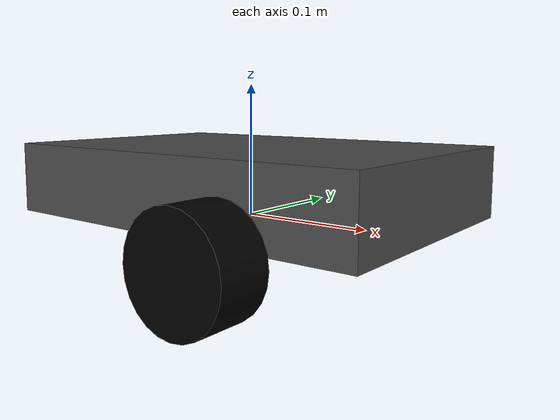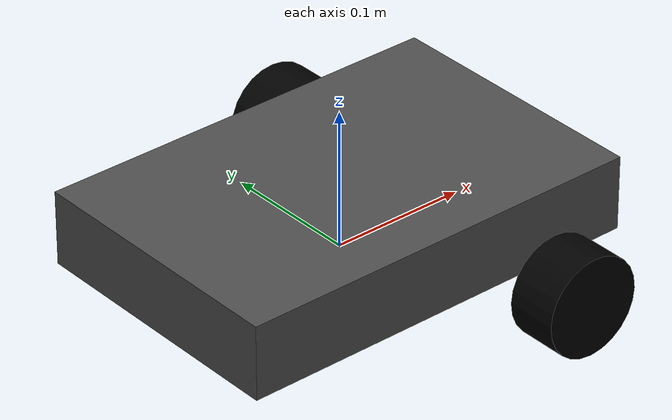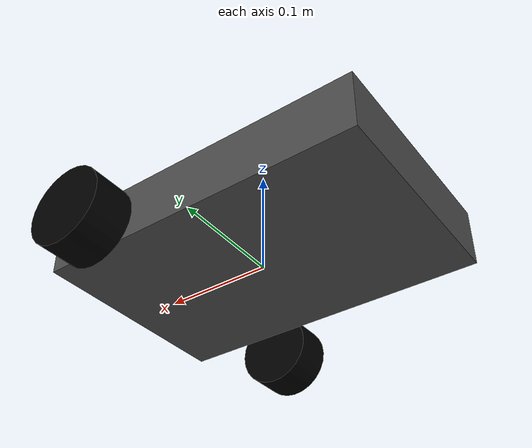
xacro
<?xml version="1.0"?>
<robot xmlns:xacro="http://www.ros.org/wiki/xacro"  name="rover">

    <xacro:include filename="rover_core.xacro"/>

    <xacro:include filename="ros2_real_bot_control.xacro"/>

</robot>

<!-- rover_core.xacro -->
<robot xmlns:xacro="http://www.ros.org/wiki/xacro" >

    <xacro:include filename="inertial_macros.xacro"/>

    <xacro:property name="rover_length" value="0.302"/>
    <xacro:property name="rover_width" value="0.201"/>
    <xacro:property name="rover_height" value="0.054"/>
    <xacro:property name="rover_mass" value="1.0"/>
    <xacro:property name="wheel_radius" value="0.036"/>
    <xacro:property name="wheel_thickness" value="0.037"/>
    <xacro:property name="wheel_mass" value="0.04"/>

    <material name="white">
        <color rgba="1.0 1.0 1.0 1.0"/>
    </material>

    <material name="orange">
        <color rgba="1.0 0.3 0.1 1.0"/>
    </material>

    <material name="blue">
        <color rgba="0.2 0.2 1.0 1.0"/>
    </material>

    <material name="black">
        <color rgba="0.0 0.0 0.0 1.0"/>
    </material>

    <material name="Gray">
        <color rgba="0.3 0.3 0.3 1.0"/>
    </material>

    <!-- Base Link -->
    <link name="base_link">
    </link>

    <joint name="chassis_joint" type="fixed">
        <origin xyz="0.0 0.0 0.0" rpy="0.0 0.0 0.0"/>
        <parent link="base_link"/>
        <child link="chassis"/>
        <axis xyz="0.0 0.0 0.0"/>
        <limit lower="0.0" upper="0.0" effort="0.0" velocity="0.0"/>
    </joint>

    <!-- Chassis Link-->
    <link name="chassis">
        <visual>
            <origin xyz="0.0 0.0 ${rover_height/2}" rpy="0.0 0.0 0.0"/>

            <geometry>
                <box size="${rover_length} ${rover_width} ${rover_height}"/>
            </geometry>

            <material name="Gray">
                <color rgba="0.3 0.3 0.3 1.0"/>
            </material>
        </visual>

        <collision>
            <origin xyz="0.0 0.0 0.01" rpy="0.0 0.0 0.0"/>
            <geometry>
                <box size="${rover_length} ${rover_width} ${rover_height}"/>
            </geometry>
        </collision>

        <xacro:inertial_box mass = "0.5"  x = "${rover_length}" y = "${rover_width}" z = "${rover_height}">
            <origin xyz="0.0 0.0 ${rover_height/2}" rpy="0.0 0.0 0.0"/>

        </xacro:inertial_box>
    </link>

    <gazebo reference = "chassis">
        <material>
            Gazebo/White
        </material>
    </gazebo>

    <!-- front face Link -->

    <joint name="face_joint" type="fixed">
        <origin xyz="0.0 0.0 0.0" rpy="0.0 0.0 0.0"/>
        <parent link="base_link"/>
        <child link="Front"/>
        <axis xyz="0.0 0.0 0.0"/>
        <limit lower="0.0" upper="0.0" effort="0.0" velocity="0.0"/>
    </joint>

    <link name="Front">
        <visual>
            <origin xyz="0.12 0.0 0.04" rpy="0.0 0.0 0.0"/>

            <geometry>
                <box size=".02 0.02 0.02"/>
            </geometry>

            <material name="blue">
                <color rgba="0.3 0.3 0.3 1.0"/>
            </material>
        </visual>
    </link>

    <gazebo reference = "Front">
        <material>
            Gazebo/Blue
        </material>
    </gazebo>

    <!--  Front Left Wheel Link-->
    <joint name="left_wheel_joint" type="continuous">

        <parent link="base_link"/>
        <child link="left_wheel"/>
        <origin xyz="0.075 0.140 0.0" rpy="1.57 0.0 0.0"/>
        <axis xyz="0.0 0.0 -0.1"/>

    </joint>

    <link name="left_wheel">
        <visual>

            <geometry>
                <cylinder radius="${wheel_radius}" length="${wheel_thickness}"/>
            </geometry>

            <material name="orange">
                <color rgba="0.0 0.0 0.0 1.0"/>
            </material>
        </visual>

        <collision>
            <geometry>
                <sphere  radius="${wheel_radius}"/>
            </geometry>
        </collision>

        <xacro:inertial_cylinder mass="${wheel_mass}" radius="${wheel_radius}" length="${wheel_thickness}">
            <origin xyz="0.0 0.0 0.0" rpy="0.0 0.0 0.0"/>
        </xacro:inertial_cylinder>

    </link>

    <gazebo reference = "left_wheel">
        <material>
            Gazebo/Orange
        </material>
    </gazebo>

    <!-- Front Right Wheel Link -->
    <joint name="right_wheel_joint" type="continuous">

        <parent link="base_link"/>
        <child link="right_wheel"/>
        <origin xyz="0.075 -0.140 0.0" rpy="1.57 0.0 0.0"/>
        <axis xyz="0.0 0.0 -0.1"/>

    </joint>

    <link name="right_wheel">
        <visual>

            <geometry>
                <cylinder radius="${wheel_radius}" length="${wheel_thickness}"/>
            </geometry>

            <material name="orange">
                <color rgba="0.0 0.0 0.0 1.0"/>
            </material>
        </visual>

        <collision>
            <geometry>
                <sphere  radius="${wheel_radius}" />
            </geometry>
        </collision>

        <xacro:inertial_cylinder mass="${wheel_mass}" radius="${wheel_radius}" length="${wheel_thickness}">
            <origin xyz="0.0 0.0 0.0" rpy="0.0 0.0 0.0"/>
        </xacro:inertial_cylinder>

    </link>

    <gazebo reference = "right_wheel">
        <material>
            Gazebo/Orange
        </material>
    </gazebo>

    <!-- Back Left Wheel Link  -->

    <!-- Back Right Wheel Link -->

    </robot>
